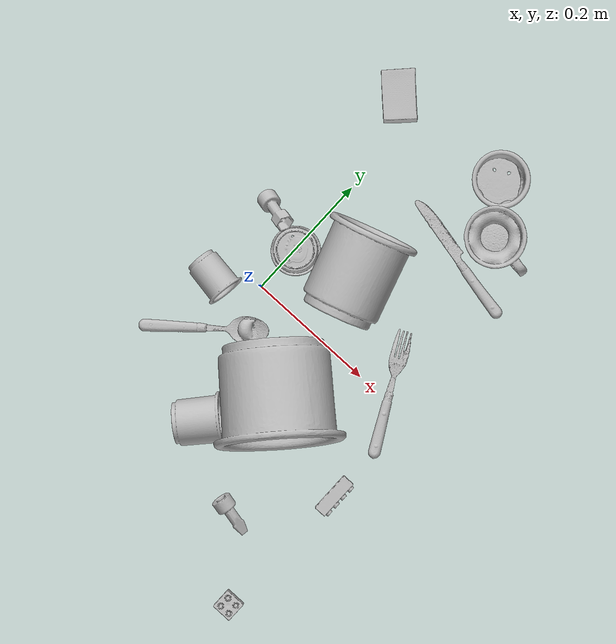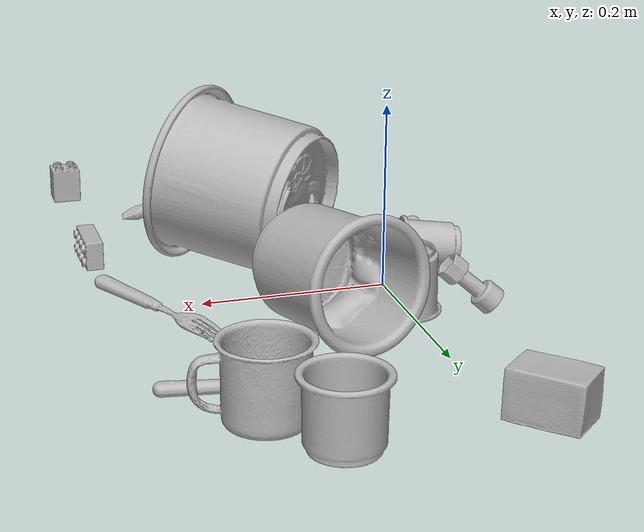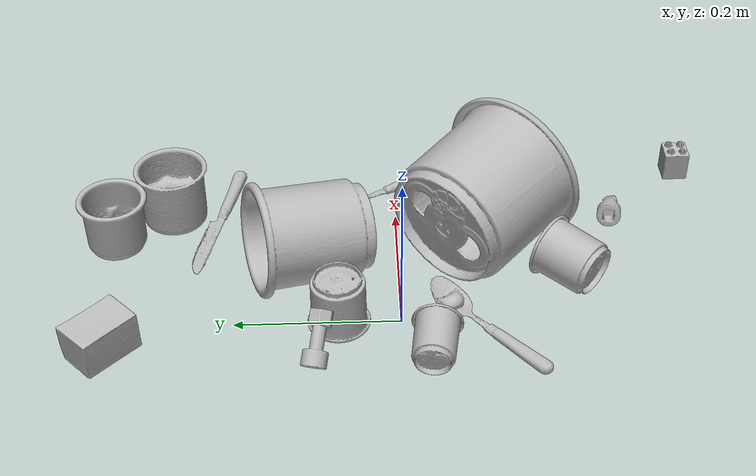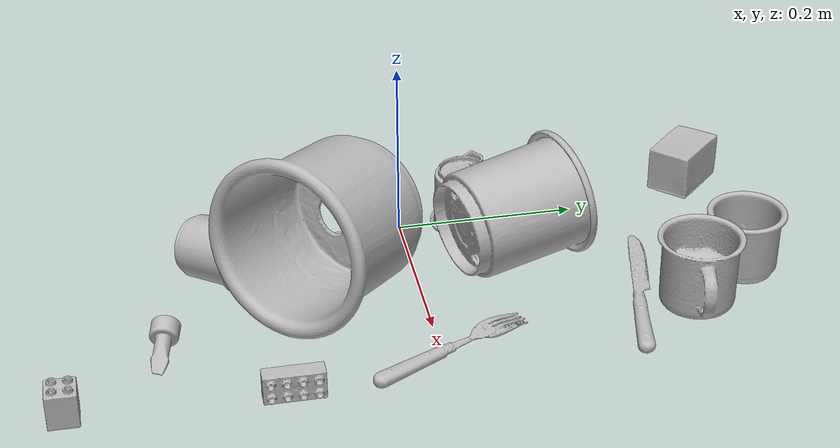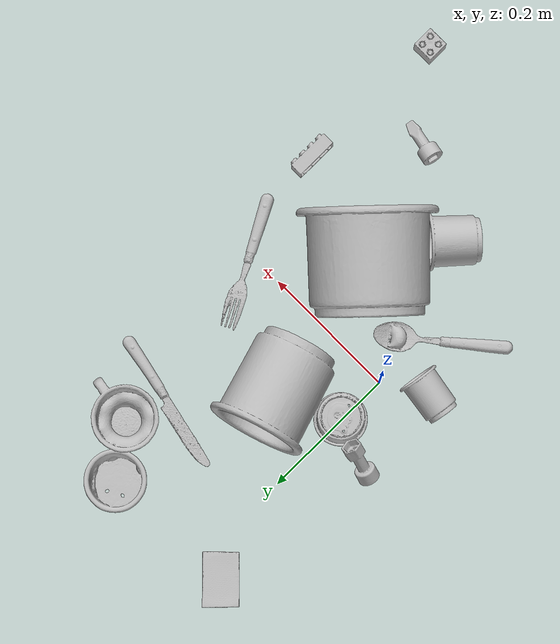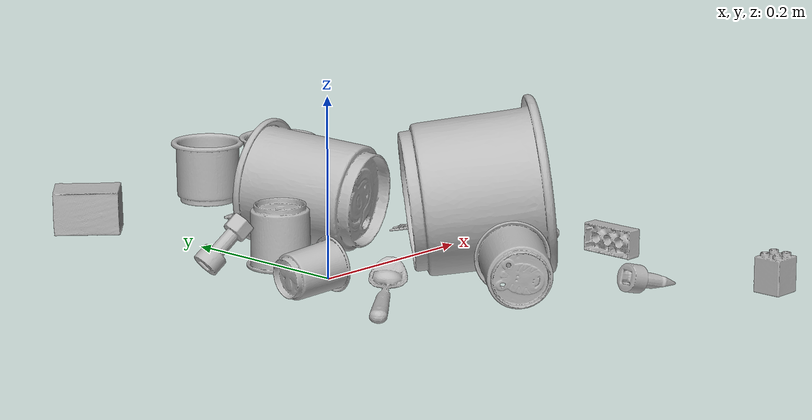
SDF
<sdf version="1.4">
  <world name="default">
    <light name="light1" type="point">
      <pose>0 0 1 0 0 0</pose>
      <diffuse>3 3 3 1</diffuse>
      <specular>3 3 3 1</specular>
    </light>
    <light name="light2" type="point">
      <pose>0 0.5 2 0 0 0</pose>
      <diffuse>1 1 1 1</diffuse>
      <specular>1 1 1 1</specular>
    </light>
    <light name="light3" type="point">
      <pose>0 0.5 2 0 0 0</pose>
      <diffuse>3 3 3 1</diffuse>
      <specular>3 3 3 1</specular>
    </light>
    <scene>
      <ambient>0.7 0.7 0.7</ambient>
    </scene>
    <model name="cup1">
      <link name="link_cup1">
        <collision name="default">
          <geometry>
            <mesh>
              <uri>model://e_cups/collision_meshes/collision.obj</uri>
              <scale>1.0 1.0 1.0</scale>
            </mesh>
          </geometry>
          <surface>
            <friction>
              <ode>
                <mu>0.5</mu>
                <mu2>0.5</mu2>
              </ode>
            </friction>
          <contact>
        <ode>
            <max_vel>0</max_vel>
            <min_depth>0.0001</min_depth>
            <kp>1e8</kp>
        </ode>
    </contact></surface>
        </collision>
        <visual name="default">
          <geometry>
            <mesh>
              <uri>model://e_cups/visual_meshes/visual.dae</uri>
              <scale>1.0 1.0 1.0</scale>
            </mesh>
          </geometry>
        </visual>
        <inertial>
          <mass>0.07679437845945358</mass>
          <pose>0.001135574304498732 0.002879783743992448 -0.0038829718250781298 0.6952411595659588 0.08767733322521654 -0.5235244631248706</pose>
          <inertia>
            <ixx>6.771342e-05</ixx>
            <iyy>7.077022e-05</iyy>
            <izz>6.4741864e-05</izz>
            <ixy>0</ixy>
            <ixz>0</ixz>
            <iyz>0</iyz>
          </inertia>
        </inertial>
      </link>
      <pose>0.0016359507571905851 0.07461121678352356 0.03560693562030792 3.1396965910645624 0.008251737319252718 1.789289179809276</pose>
    </model>
    <model name="silverware1">
      <link name="link_silverware1">
        <collision name="default">
          <geometry>
            <mesh>
              <uri>model://spoon/collision_meshes/collision.obj</uri>
              <scale>1.0 1.0 1.0</scale>
            </mesh>
          </geometry>
          <surface>
            <friction>
              <ode>
                <mu>0.5</mu>
                <mu2>0.5</mu2>
              </ode>
            </friction>
          <contact>
        <ode>
            <max_vel>0</max_vel>
            <min_depth>0.0001</min_depth>
            <kp>1e8</kp>
        </ode>
    </contact></surface>
        </collision>
        <visual name="default">
          <geometry>
            <mesh>
              <uri>model://spoon/visual_meshes/visual.dae</uri>
              <scale>1.0 1.0 1.0</scale>
            </mesh>
          </geometry>
        </visual>
        <inertial>
          <mass>0.015083584003150463</mass>
          <pose>-0.005526313092559576 -0.001603418029844761 -0.000727165665011853 0.035216710638299134 -0.03906584880684835 0.006150613179751253</pose>
          <inertia>
            <ixx>8.389734e-07</ixx>
            <iyy>5.739254e-05</iyy>
            <izz>5.7806283e-05</izz>
            <ixy>0</ixy>
            <ixz>0</ixz>
            <iyz>0</iyz>
          </inertia>
        </inertial>
      </link>
      <pose>-0.02244177833199501 -0.10116654634475708 0.008385260589420795 0.006731749785737517 0.026892997799224133 0.6863694828339335</pose>
    </model>
    <model name="cup2">
      <link name="link_cup2">
        <collision name="default">
          <geometry>
            <mesh>
              <uri>model://g_cups/collision_meshes/collision.obj</uri>
              <scale>1.0 1.0 1.0</scale>
            </mesh>
          </geometry>
          <surface>
            <friction>
              <ode>
                <mu>0.5</mu>
                <mu2>0.5</mu2>
              </ode>
            </friction>
          <contact>
        <ode>
            <max_vel>0</max_vel>
            <min_depth>0.0001</min_depth>
            <kp>1e8</kp>
        </ode>
    </contact></surface>
        </collision>
        <visual name="default">
          <geometry>
            <mesh>
              <uri>model://g_cups/visual_meshes/visual.dae</uri>
              <scale>1.0 1.0 1.0</scale>
            </mesh>
          </geometry>
        </visual>
        <inertial>
          <mass>0.04187431186437607</mass>
          <pose>-0.0007946277037262917 -4.2064348235726357e-05 -0.0021329382434487343 -0.21382305588888167 -0.31410659578681893 0.31120215507532384</pose>
          <inertia>
            <ixx>4.8876722e-05</ixx>
            <iyy>4.871046e-05</iyy>
            <izz>5.0627856e-05</izz>
            <ixy>0</ixy>
            <ixz>0</ixz>
            <iyz>0</iyz>
          </inertia>
        </inertial>
      </link>
      <pose>0.15704360604286194 0.356052428483963 0.037203069776296616 -2.895263961953004e-06 5.144676252533148e-06 -2.7433674138260646</pose>
    </model>
    <model name="silverware2">
      <link name="link_silverware2">
        <collision name="default">
          <geometry>
            <mesh>
              <uri>model://fork/collision_meshes/collision.obj</uri>
              <scale>1.0 1.0 1.0</scale>
            </mesh>
          </geometry>
          <surface>
            <friction>
              <ode>
                <mu>0.5</mu>
                <mu2>0.5</mu2>
              </ode>
            </friction>
          <contact>
        <ode>
            <max_vel>0</max_vel>
            <min_depth>0.0001</min_depth>
            <kp>1e8</kp>
        </ode>
    </contact></surface>
        </collision>
        <visual name="default">
          <geometry>
            <mesh>
              <uri>model://fork/visual_meshes/visual.dae</uri>
              <scale>1.0 1.0 1.0</scale>
            </mesh>
          </geometry>
        </visual>
        <inertial>
          <mass>0.025364622473716736</mass>
          <pose>-0.029570050537586212 0.00046588227269239724 0.00032188615296036005 -0.013551666838441594 -0.010977837199147297 0.014453899745261501</pose>
          <inertia>
            <ixx>8.8917335e-07</ixx>
            <iyy>6.621973e-05</iyy>
            <izz>6.661743e-05</izz>
            <ixy>0</ixy>
            <ixz>0</ixz>
            <iyz>0</iyz>
          </inertia>
        </inertial>
      </link>
      <pose>0.24932710826396942 0.009399326518177986 0.007446607109159231 -3.063499304203066 0.002835902393739136 2.059271652376152</pose>
    </model>
    <model name="cup3">
      <link name="link_cup3">
        <collision name="default">
          <geometry>
            <mesh>
              <uri>model://f_cups/collision_meshes/collision.obj</uri>
              <scale>1.0 1.0 1.0</scale>
            </mesh>
          </geometry>
          <surface>
            <friction>
              <ode>
                <mu>0.5</mu>
                <mu2>0.5</mu2>
              </ode>
            </friction>
          <contact>
        <ode>
            <max_vel>0</max_vel>
            <min_depth>0.0001</min_depth>
            <kp>1e8</kp>
        </ode>
    </contact></surface>
        </collision>
        <visual name="default">
          <geometry>
            <mesh>
              <uri>model://f_cups/visual_meshes/visual.dae</uri>
              <scale>1.0 1.0 1.0</scale>
            </mesh>
          </geometry>
        </visual>
        <inertial>
          <mass>0.08338716626167297</mass>
          <pose>-0.0031714679207652807 -0.0006240069633349776 -0.003655536798760295 0.7862348245142414 -0.2607950949044878 -0.18237232658982702</pose>
          <inertia>
            <ixx>7.838616e-05</ixx>
            <iyy>8.222797e-05</iyy>
            <izz>8.560161e-05</izz>
            <ixy>0</ixy>
            <ixz>0</ixz>
            <iyz>0</iyz>
          </inertia>
        </inertial>
      </link>
      <pose>0.06533964723348618 -0.21027933061122894 0.03704696521162987 1.3203608691929496 -1.172399201897174 2.6449637090081692</pose>
    </model>
    <model name="silverware3">
      <link name="link_silverware3">
        <collision name="default">
          <geometry>
            <mesh>
              <uri>model://knife/collision_meshes/collision.obj</uri>
              <scale>1.0 1.0 1.0</scale>
            </mesh>
          </geometry>
          <surface>
            <friction>
              <ode>
                <mu>0.5</mu>
                <mu2>0.5</mu2>
              </ode>
            </friction>
          <contact>
        <ode>
            <max_vel>0</max_vel>
            <min_depth>0.0001</min_depth>
            <kp>1e8</kp>
        </ode>
    </contact></surface>
        </collision>
        <visual name="default">
          <geometry>
            <mesh>
              <uri>model://knife/visual_meshes/visual.dae</uri>
              <scale>1.0 1.0 1.0</scale>
            </mesh>
          </geometry>
        </visual>
        <inertial>
          <mass>0.015509607270359993</mass>
          <pose>-0.02378525398671627 0.0015275129117071629 5.0620248657651246e-05 0.07305981518176793 0.01724841487141605 -0.0074098192082968535</pose>
          <inertia>
            <ixx>4.4022548e-07</ixx>
            <iyy>5.95854e-05</iyy>
            <izz>5.9727172e-05</izz>
            <ixy>0</ixy>
            <ixz>0</ixz>
            <iyz>0</iyz>
          </inertia>
        </inertial>
      </link>
      <pose>0.18979060649871826 0.23028786480426788 0.007946575060486794 -0.023844750577777355 -0.014543227324186378 2.9198730220840066</pose>
    </model>
    <model name="cup4">
      <link name="link_cup4">
        <collision name="default">
          <geometry>
            <mesh>
              <uri>model://d_cups/collision_meshes/collision.obj</uri>
              <scale>2.0 2.0 2.0</scale>
            </mesh>
          </geometry>
          <surface>
            <friction>
              <ode>
                <mu>0.5</mu>
                <mu2>0.5</mu2>
              </ode>
            </friction>
          <contact>
        <ode>
            <max_vel>0</max_vel>
            <min_depth>0.0001</min_depth>
            <kp>1e8</kp>
        </ode>
    </contact></surface>
        </collision>
        <visual name="default">
          <geometry>
            <mesh>
              <uri>model://d_cups/visual_meshes/visual.dae</uri>
              <scale>2.0 2.0 2.0</scale>
            </mesh>
          </geometry>
        </visual>
        <inertial>
          <mass>0.5481204390525818</mass>
          <pose>0.001613611588254571 0.0038234798703342676 -0.0045333015732467175 0.2401214667218237 -0.2470996070340832 0.5942599316130982</pose>
          <inertia>
            <ixx>0.001835623</ixx>
            <iyy>0.0018303102</iyy>
            <izz>0.0016615508</izz>
            <ixy>0</ixy>
            <ixz>0</ixz>
            <iyz>0</iyz>
          </inertia>
        </inertial>
      </link>
      <pose>0.090848907828331 0.10860611498355865 0.06492501497268677 -1.4724582632595942 0.4619709563273115 0.34680586983379785</pose>
    </model>
    <model name="cup41">
      <link name="link_cup41">
        <collision name="default">
          <geometry>
            <mesh>
              <uri>model://b_cups/collision_meshes/collision.obj</uri>
              <scale>1.0 1.0 1.0</scale>
            </mesh>
          </geometry>
          <surface>
            <friction>
              <ode>
                <mu>0.5</mu>
                <mu2>0.5</mu2>
              </ode>
            </friction>
          <contact>
        <ode>
            <max_vel>0</max_vel>
            <min_depth>0.0001</min_depth>
            <kp>1e8</kp>
        </ode>
    </contact></surface>
        </collision>
        <visual name="default">
          <geometry>
            <mesh>
              <uri>model://b_cups/visual_meshes/visual.dae</uri>
              <scale>1.0 1.0 1.0</scale>
            </mesh>
          </geometry>
        </visual>
        <inertial>
          <mass>0.04462150111794472</mass>
          <pose>0.0005182005697861314 0.0018058601999655366 -0.0013381819007918239 0.11356336410280554 0.038725039404113405 -0.3456939711537357</pose>
          <inertia>
            <ixx>2.9207904e-05</ixx>
            <iyy>2.8653376e-05</iyy>
            <izz>2.45779e-05</izz>
            <ixy>0</ixy>
            <ixz>0</ixz>
            <iyz>0</iyz>
          </inertia>
        </inertial>
      </link>
      <pose>-0.0643996074795723 -0.03572563827037811 0.02776259370148182 -1.4737306917277129 0.13882118229233725 -1.7092195680136015</pose>
    </model>
    <model name="cup5">
      <link name="link_cup5">
        <collision name="default">
          <geometry>
            <mesh>
              <uri>model://i_cups/collision_meshes/collision.obj</uri>
              <scale>2.0 2.0 2.0</scale>
            </mesh>
          </geometry>
          <surface>
            <friction>
              <ode>
                <mu>0.5</mu>
                <mu2>0.5</mu2>
              </ode>
            </friction>
          <contact>
        <ode>
            <max_vel>0</max_vel>
            <min_depth>0.0001</min_depth>
            <kp>1e8</kp>
        </ode>
    </contact></surface>
        </collision>
        <visual name="default">
          <geometry>
            <mesh>
              <uri>model://i_cups/visual_meshes/visual.dae</uri>
              <scale>2.0 2.0 2.0</scale>
            </mesh>
          </geometry>
        </visual>
        <inertial>
          <mass>0.7183689475059509</mass>
          <pose>0.00022480347251985222 0.0003359461552463472 -0.0017158043337985873 -0.028983189607302198 -0.03987301698166741 -0.34590760218104494</pose>
          <inertia>
            <ixx>0.0039783698</ixx>
            <iyy>0.004013422</iyy>
            <izz>0.0044464725</izz>
            <ixy>0</ixy>
            <ixz>0</ixz>
            <iyz>0</iyz>
          </inertia>
        </inertial>
      </link>
      <pose>0.124480240046978 -0.10087227076292038 0.08992018550634384 -1.4506600434410133 0.1622268222241772 -2.3083094170362486</pose>
    </model>
    <model name="cup51">
      <link name="link_cup51">
        <collision name="default">
          <geometry>
            <mesh>
              <uri>model://mug/collision_meshes/collision.obj</uri>
              <scale>1.0 1.0 1.0</scale>
            </mesh>
          </geometry>
          <surface>
            <friction>
              <ode>
                <mu>0.5</mu>
                <mu2>0.5</mu2>
              </ode>
            </friction>
          <contact>
        <ode>
            <max_vel>0</max_vel>
            <min_depth>0.0001</min_depth>
            <kp>1e8</kp>
        </ode>
    </contact></surface>
        </collision>
        <visual name="default">
          <geometry>
            <mesh>
              <uri>model://mug/visual_meshes/visual.dae</uri>
              <scale>1.0 1.0 1.0</scale>
            </mesh>
          </geometry>
        </visual>
        <inertial>
          <mass>0.1239403635263443</mass>
          <pose>0.009571672417223454 0.0008143244776874781 -0.01094733364880085 -0.12983126758676797 0.08737752450174939 0.055073145905888306</pose>
          <inertia>
            <ixx>0.0001231125</ixx>
            <iyy>0.00013750937</iyy>
            <izz>0.00015903146</izz>
            <ixy>0</ixy>
            <ixz>0</ixz>
            <iyz>0</iyz>
          </inertia>
        </inertial>
      </link>
      <pose>0.21975934505462646 0.28581446409225464 0.04094899445772171 3.7429062016425276e-08 1.0611860243890552e-08 2.97445589163417</pose>
    </model>
    <model name="toy1">
      <link name="link_toy1">
        <collision name="default">
          <geometry>
            <mesh>
              <uri>model://e_toy_airplane/collision_meshes/collision.obj</uri>
              <scale>1.0 1.0 1.0</scale>
            </mesh>
          </geometry>
          <surface>
            <friction>
              <ode>
                <mu>0.5</mu>
                <mu2>0.5</mu2>
              </ode>
            </friction>
          <contact>
        <ode>
            <max_vel>0</max_vel>
            <min_depth>0.0001</min_depth>
            <kp>1e8</kp>
        </ode>
    </contact></surface>
        </collision>
        <visual name="default">
          <geometry>
            <mesh>
              <uri>model://e_toy_airplane/visual_meshes/visual.dae</uri>
              <scale>1.0 1.0 1.0</scale>
            </mesh>
          </geometry>
        </visual>
        <inertial>
          <mass>0.022831259295344353</mass>
          <pose>0.00011740475019905716 -2.2482799977296963e-05 -0.011187204159796238 0.005518483498250157 0.009228324176637706 0.15041338923558414</pose>
          <inertia>
            <ixx>6.9683606e-06</ixx>
            <iyy>6.897077e-06</iyy>
            <izz>2.0942666e-06</izz>
            <ixy>0</ixy>
            <ixz>0</ixz>
            <iyz>0</iyz>
          </inertia>
        </inertial>
      </link>
      <pose>0.19907353818416595 -0.281945139169693 0.010808706283569336 -2.1451774108802364 1.1028216008605045 -2.318093855108579</pose>
    </model>
    <model name="toy2">
      <link name="link_toy2">
        <collision name="default">
          <geometry>
            <mesh>
              <uri>model://c_toy_airplane/collision_meshes/collision.obj</uri>
              <scale>1.0 1.0 1.0</scale>
            </mesh>
          </geometry>
          <surface>
            <friction>
              <ode>
                <mu>0.5</mu>
                <mu2>0.5</mu2>
              </ode>
            </friction>
          <contact>
        <ode>
            <max_vel>0</max_vel>
            <min_depth>0.0001</min_depth>
            <kp>1e8</kp>
        </ode>
    </contact></surface>
        </collision>
        <visual name="default">
          <geometry>
            <mesh>
              <uri>model://c_toy_airplane/visual_meshes/visual.dae</uri>
              <scale>1.0 1.0 1.0</scale>
            </mesh>
          </geometry>
        </visual>
        <inertial>
          <mass>0.014964861795306206</mass>
          <pose>-0.00023024252732284367 -4.4292315237726143e-07 -0.006080531980842352 -0.006193085961310731 -0.016797608001683555 0.7655123908688324</pose>
          <inertia>
            <ixx>6.871557e-06</ixx>
            <iyy>6.852165e-06</iyy>
            <izz>1.6133057e-06</izz>
            <ixy>0</ixy>
            <ixz>0</ixz>
            <iyz>0</iyz>
          </inertia>
        </inertial>
      </link>
      <pose>-0.060438722372055054 0.09833581000566483 0.033286530524492264 -0.39434381592467593 -0.7807290558601013 -2.8419043304788625</pose>
    </model>
    <model name="toy3">
      <link name="link_toy3">
        <collision name="default">
          <geometry>
            <mesh>
              <uri>model://c_lego_duplo/collision_meshes/collision.obj</uri>
              <scale>1.0 1.0 1.0</scale>
            </mesh>
          </geometry>
          <surface>
            <friction>
              <ode>
                <mu>0.5</mu>
                <mu2>0.5</mu2>
              </ode>
            </friction>
          <contact>
        <ode>
            <max_vel>0</max_vel>
            <min_depth>0.0001</min_depth>
            <kp>1e8</kp>
        </ode>
    </contact></surface>
        </collision>
        <visual name="default">
          <geometry>
            <mesh>
              <uri>model://c_lego_duplo/visual_meshes/visual.dae</uri>
              <scale>1.0 1.0 1.0</scale>
            </mesh>
          </geometry>
        </visual>
        <inertial>
          <mass>0.043811071664094925</mass>
          <pose>0.00031645968556404114 0.00019464633078314364 0.0010453150607645512 -0.011520790971684333 0.005900079198968262 0.031100329952374963</pose>
          <inertia>
            <ixx>1.685932e-05</ixx>
            <iyy>5.3854724e-06</iyy>
            <izz>1.970185e-05</izz>
            <ixy>0</ixy>
            <ixz>0</ixz>
            <iyz>0</iyz>
          </inertia>
        </inertial>
      </link>
      <pose>0.2925882935523987 -0.1575929820537567 0.016252057626843452 2.08059785229831 -1.5446942524622356 1.0632014998456991</pose>
    </model>
    <model name="toy4">
      <link name="link_toy4">
        <collision name="default">
          <geometry>
            <mesh>
              <uri>model://foam_brick/collision_meshes/collision.obj</uri>
              <scale>1.0 1.0 1.0</scale>
            </mesh>
          </geometry>
          <surface>
            <friction>
              <ode>
                <mu>0.5</mu>
                <mu2>0.5</mu2>
              </ode>
            </friction>
          <contact>
        <ode>
            <max_vel>0</max_vel>
            <min_depth>0.0001</min_depth>
            <kp>1e8</kp>
        </ode>
    </contact></surface>
        </collision>
        <visual name="default">
          <geometry>
            <mesh>
              <uri>model://foam_brick/visual_meshes/visual.dae</uri>
              <scale>1.0 1.0 1.0</scale>
            </mesh>
          </geometry>
        </visual>
        <inertial>
          <mass>0.278400182723999</mass>
          <pose>-0.0002522472059354186 0.00034584358218126 -0.0002532101352699101 -0.2940175595239471 0.01727444673583901 -0.0007449899720057078</pose>
          <inertia>
            <ixx>0.00012161039</ixx>
            <iyy>0.00019415727</iyy>
            <izz>0.00019662478</izz>
            <ixy>0</ixy>
            <ixz>0</ixz>
            <iyz>0</iyz>
          </inertia>
        </inertial>
      </link>
      <pose>-0.03943323716521263 0.34874898195266724 0.025496844202280045 3.1325084429243364 0.006607188340132754 2.3530834767903155</pose>
    </model>
    <model name="toy5">
      <link name="link_toy5">
        <collision name="default">
          <geometry>
            <mesh>
              <uri>model://f_lego_duplo/collision_meshes/collision.obj</uri>
              <scale>1.0 1.0 1.0</scale>
            </mesh>
          </geometry>
          <surface>
            <friction>
              <ode>
                <mu>0.5</mu>
                <mu2>0.5</mu2>
              </ode>
            </friction>
          <contact>
        <ode>
            <max_vel>0</max_vel>
            <min_depth>0.0001</min_depth>
            <kp>1e8</kp>
        </ode>
    </contact></surface>
        </collision>
        <visual name="default">
          <geometry>
            <mesh>
              <uri>model://f_lego_duplo/visual_meshes/visual.dae</uri>
              <scale>1.0 1.0 1.0</scale>
            </mesh>
          </geometry>
        </visual>
        <inertial>
          <mass>0.033785246312618256</mass>
          <pose>2.369392132095527e-05 0.00013393175322562456 0.0018837875686585903 0.029838526741840128 -0.014425189077584645 -0.6756601169838921</pose>
          <inertia>
            <ixx>7.139008e-06</ixx>
            <iyy>7.202609e-06</iyy>
            <izz>6.1969613e-06</izz>
            <ixy>0</ixy>
            <ixz>0</ixz>
            <iyz>0</iyz>
          </inertia>
        </inertial>
      </link>
      <pose>0.2835172712802887 -0.3835925757884979 0.021871011704206467 2.2296803848352698e-06 1.2831989562690292e-06 0.00014671022850221065</pose>
    </model>
  <physics type="ode">
      <max_contacts>50</max_contacts>
      <ode>
        <solver>
          <type>quick</type>
          <iters>75</iters>
        </solver>
        <constraints>
          <contact_max_correcting_vel>0</contact_max_correcting_vel>
          <contact_surface_layer>0</contact_surface_layer>
        </constraints>
      </ode>
    </physics></world>
</sdf>
